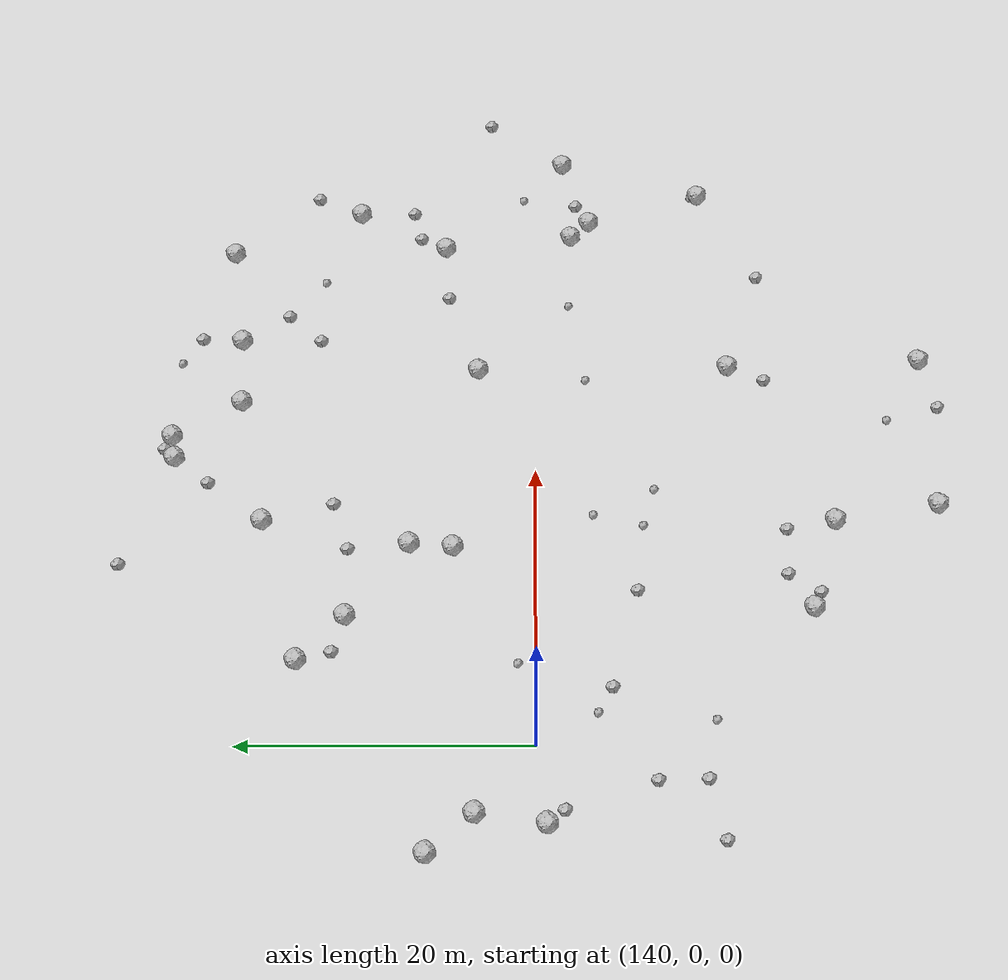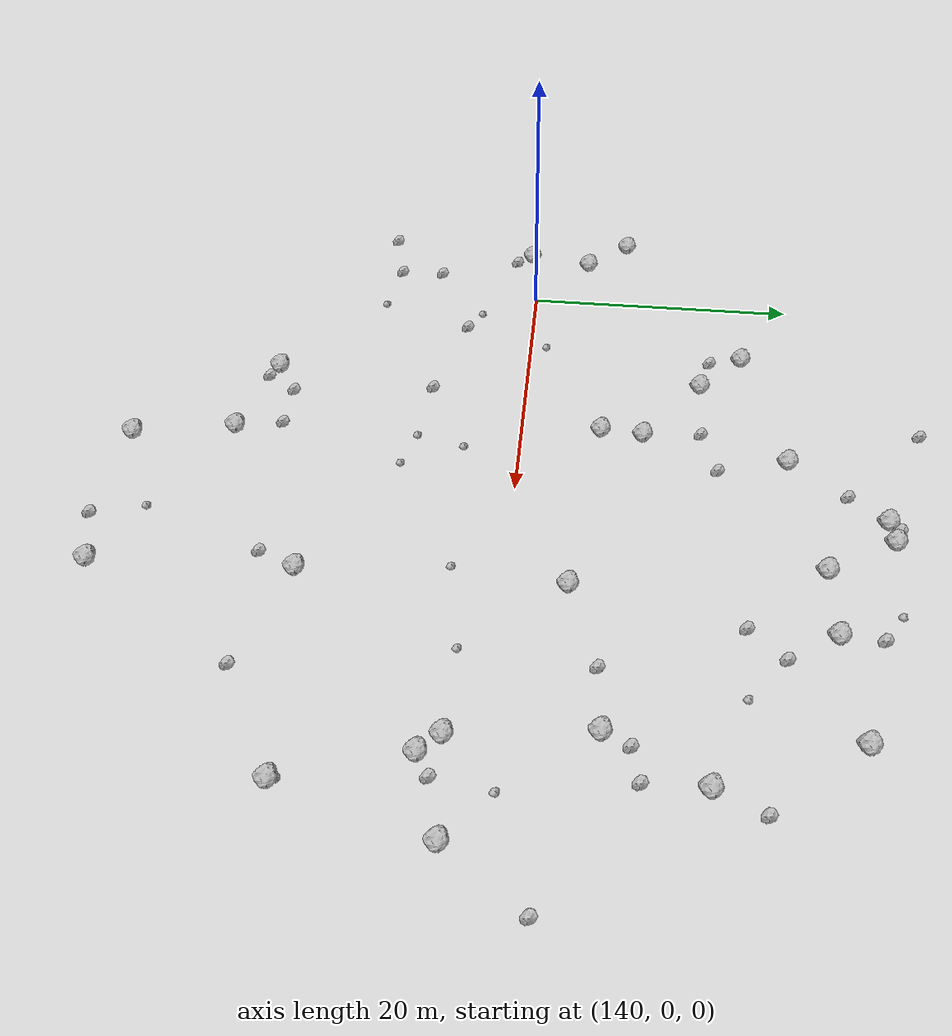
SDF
<sdf version="1.6">
 <world name="default">
  <include><uri>model://sun</uri></include>
  <model name="rock1_4_2">
   <include><uri>model://rock1</uri><pose>135.58384378891975 4.052281735157365 0.5 0 0 0</pose></include>
  </model>
  <model name="rock1_4_3">
   <include><uri>model://rock1</uri><pose>133.0149560592227 7.180877628024703 0.5 0 0 0</pose></include>
  </model>
  <model name="rock1_4_4">
   <include><uri>model://rock1</uri><pose>154.40288414471897 8.809571608019702 0.5 0 0 0</pose></include>
  </model>
  <model name="rock1_4_5">
   <include><uri>model://rock1</uri><pose>134.89102840240855 -0.6825223266689697 0.5 0 0 0</pose></include>
  </model>
  <model name="rock1_4_6">
   <include><uri>model://rock1</uri><pose>162.75517870995841 25.92905045723726 0.5 0 0 0</pose></include>
  </model>
  <model name="rock1_4_7">
   <include><uri>model://rock1</uri><pose>156.17628253453734 19.136253959658745 0.5 0 0 0</pose></include>
  </model>
  <model name="rock1_4_8">
   <include><uri>model://rock1</uri><pose>168.04660443159497 4.1521895446485 0.5 0 0 0</pose></include>
  </model>
  <model name="rock1_4_9">
   <include><uri>model://rock1</uri><pose>179.41561606439717 -2.677014754234264 0.5 0 0 0</pose></include>
  </model>
  <model name="rock1_4_10">
   <include><uri>model://rock1</uri><pose>156.06411024754237 -20.885328744778484 0.5 0 0 0</pose></include>
  </model>
  <model name="rock1_4_11">
   <include><uri>model://rock1</uri><pose>177.99545555485315 22.48290592920356 0.5 0 0 0</pose></include>
  </model>
  <model name="rock1_4_12">
   <include><uri>model://rock1</uri><pose>168.24189046927 -13.928593896116357 0.5 0 0 0</pose></include>
  </model>
  <model name="rock1_4_13">
   <include><uri>model://rock1</uri><pose>181.50557744822282 13.141873767956135 0.5 0 0 0</pose></include>
  </model>
  <model name="rock1_4_14">
   <include><uri>model://rock1</uri><pose>183.08774625579127 -12.374847255484866 0.5 0 0 0</pose></include>
  </model>
  <model name="rock1_4_15">
   <include><uri>model://rock1</uri><pose>168.69863860568074 -27.88723412714498 0.5 0 0 0</pose></include>
  </model>
  <model name="rock1_4_16">
   <include><uri>model://rock1</uri><pose>165.48518226110724 21.151240272396258 0.5 0 0 0</pose></include>
  </model>
  <model name="rock1_4_17">
   <include><uri>model://rock1</uri><pose>149.6208461169271 -18.975373238361467 0.5 0 0 0</pose></include>
  </model>
  <model name="rock1_4_18">
   <include><uri>model://rock1</uri><pose>185.95977015068556 -2.1140723033388973 0.5 0 0 0</pose></include>
  </model>
  <model name="rock1_4_19">
   <include><uri>model://rock1</uri><pose>149.12623258575874 13.023780146128786 0.5 0 0 0</pose></include>
  </model>
  <model name="rock1_4_20">
   <include><uri>model://rock1</uri><pose>157.26622272715676 -28.19213744715308 0.5 0 0 0</pose></include>
  </model>
  <model name="rock1_4_21">
   <include><uri>model://rock1</uri><pose>170.50564061594966 21.443228438186708 0.5 0 0 0</pose></include>
  </model>
  <model name="rock1_4_22">
   <include><uri>model://rock1</uri><pose>161.06152577266036 25.631319993662885 0.5 0 0 0</pose></include>
  </model>
  <model name="rock1_4_23">
   <include><uri>model://rock1</uri><pose>178.43478267201374 6.678854217103876 0.5 0 0 0</pose></include>
  </model>
  <model name="rock1_4_24">
   <include><uri>model://rock1</uri><pose>145.98084908547878 16.196677225913838 0.5 0 0 0</pose></include>
  </model>
  <model name="rock1_4_25">
   <include><uri>model://rock1</uri><pose>180.70381355841477 -4.051435941412215 0.5 0 0 0</pose></include>
  </model>
  <model name="rock1_4_26">
   <include><uri>model://rock1</uri><pose>154.16884164256547 5.761369439223955 0.5 0 0 0</pose></include>
  </model>
  <model name="rock2_4_0">
   <include><uri>model://rock2</uri><pose>174.06107808290722 6.355068188732346 0.3 0 0 0</pose></include>
  </model>
  <model name="rock2_4_1">
   <include><uri>model://rock2</uri><pose>152.8916042372836 28.845236457624715 0.3 0 0 0</pose></include>
  </model>
  <model name="rock2_4_2">
   <include><uri>model://rock2</uri><pose>181.5075336942866 9.123417622235657 0.3 0 0 0</pose></include>
  </model>
  <model name="rock2_4_3">
   <include><uri>model://rock2</uri><pose>152.03027188938654 -17.375222973203346 0.3 0 0 0</pose></include>
  </model>
  <model name="rock2_4_4">
   <include><uri>model://rock2</uri><pose>133.7307742636231 -12.242587400679554 0.3 0 0 0</pose></include>
  </model>
  <model name="rock2_4_5">
   <include><uri>model://rock2</uri><pose>159.04041590983985 23.128894702120853 0.3 0 0 0</pose></include>
  </model>
  <model name="rock2_4_6">
   <include><uri>model://rock2</uri><pose>175.7772336548868 -16.502705807007146 0.3 0 0 0</pose></include>
  </model>
  <model name="rock2_4_7">
   <include><uri>model://rock2</uri><pose>170.62072872177112 24.353461782890655 0.3 0 0 0</pose></include>
  </model>
  <model name="rock2_4_8">
   <include><uri>model://rock2</uri><pose>189.64187729943973 3.341008378826352 0.3 0 0 0</pose></include>
  </model>
  <model name="rock2_4_9">
   <include><uri>model://rock2</uri><pose>157.37624749870423 14.18363732878985 0.3 0 0 0</pose></include>
  </model>
  <model name="rock2_4_10">
   <include><uri>model://rock2</uri><pose>182.15915072988628 -3.0948745520893794 0.3 0 0 0</pose></include>
  </model>
  <model name="rock2_4_11">
   <include><uri>model://rock2</uri><pose>172.52116995384358 18.111745802423734 0.3 0 0 0</pose></include>
  </model>
  <model name="rock2_4_12">
   <include><uri>model://rock2</uri><pose>137.73833337829134 -11.262484834347156 0.3 0 0 0</pose></include>
  </model>
  <model name="rock2_4_13">
   <include><uri>model://rock2</uri><pose>143.9910588525278 -5.11467963451619 0.3 0 0 0</pose></include>
  </model>
  <model name="rock2_4_14">
   <include><uri>model://rock2</uri><pose>150.86351414716484 -6.976138493956739 0.3 0 0 0</pose></include>
  </model>
  <model name="rock2_4_15">
   <include><uri>model://rock2</uri><pose>164.83552115964991 -28.931585113012453 0.3 0 0 0</pose></include>
  </model>
  <model name="rock2_4_16">
   <include><uri>model://rock2</uri><pose>170.45355700388367 15.690324275381123 0.3 0 0 0</pose></include>
  </model>
  <model name="rock2_4_17">
   <include><uri>model://rock2</uri><pose>179.24407706038318 8.529368245619665 0.3 0 0 0</pose></include>
  </model>
  <model name="rock2_4_18">
   <include><uri>model://rock2</uri><pose>155.3661037741436 -17.491242509880756 0.3 0 0 0</pose></include>
  </model>
  <model name="rock2_4_19">
   <include><uri>model://rock2</uri><pose>135.72684273702706 -1.8487765257025899 0.3 0 0 0</pose></include>
  </model>
  <model name="rock2_4_20">
   <include><uri>model://rock2</uri><pose>150.696702715187 -19.538884242949027 0.3 0 0 0</pose></include>
  </model>
  <model name="rock2_4_21">
   <include><uri>model://rock2</uri><pose>161.70461673549707 26.407051408600182 0.3 0 0 0</pose></include>
  </model>
  <model name="rock2_4_22">
   <include><uri>model://rock2</uri><pose>137.65877316263112 -7.943047926291612 0.3 0 0 0</pose></include>
  </model>
  <model name="rock2_4_23">
   <include><uri>model://rock2</uri><pose>182.85628645522647 16.40636714759269 0.3 0 0 0</pose></include>
  </model>
  <model name="rock2_4_24">
   <include><uri>model://rock2</uri><pose>146.5062942016843 13.832465502956836 0.3 0 0 0</pose></include>
  </model>
  <model name="rock2_4_25">
   <include><uri>model://rock2</uri><pose>167.07742169286527 -16.552692664531946 0.3 0 0 0</pose></include>
  </model>
  <model name="rock2_4_26">
   <include><uri>model://rock2</uri><pose>153.98308630196004 13.057481178751402 0.3 0 0 0</pose></include>
  </model>
  <model name="rock3_4_0">
   <include><uri>model://rock3</uri><pose>182.9709235402702 -11.90000473867395 0.2 0 0 0</pose></include>
  </model>
  <model name="rock3_4_1">
   <include><uri>model://rock3</uri><pose>168.64390185183882 25.69176840114727 0.2 0 0 0</pose></include>
  </model>
  <model name="rock3_4_2">
   <include><uri>model://rock3</uri><pose>155.69694942064112 -7.521615221318214 0.2 0 0 0</pose></include>
  </model>
  <model name="rock3_4_3">
   <include><uri>model://rock3</uri><pose>167.157119445916 -3.648189962355243 0.2 0 0 0</pose></include>
  </model>
  <model name="rock3_4_4">
   <include><uri>model://rock3</uri><pose>182.73519733529017 0.7927076337493766 0.2 0 0 0</pose></include>
  </model>
  <model name="rock3_4_5">
   <include><uri>model://rock3</uri><pose>141.69633775369172 -12.005229092566246 0.2 0 0 0</pose></include>
  </model>
  <model name="rock3_4_6">
   <include><uri>model://rock3</uri><pose>142.22099988562448 -4.147303628203517 0.2 0 0 0</pose></include>
  </model>
  <model name="rock3_4_7">
   <include><uri>model://rock3</uri><pose>163.83489485869524 -25.25384751347174 0.2 0 0 0</pose></include>
  </model>
  <model name="rock3_4_8">
   <include><uri>model://rock3</uri><pose>145.64890920116068 1.2029647033085773 0.2 0 0 0</pose></include>
  </model>
  <model name="rock3_4_9">
   <include><uri>model://rock3</uri><pose>156.50711325622188 -4.0419111734037365 0.2 0 0 0</pose></include>
  </model>
  <model name="rock3_4_10">
   <include><uri>model://rock3</uri><pose>175.4742461006356 15.540151484109444 0.2 0 0 0</pose></include>
  </model>
  <model name="rock3_4_11">
   <include><uri>model://rock3</uri><pose>158.4432455617402 -8.356539086610276 0.2 0 0 0</pose></include>
  </model>
  <model name="rock3_4_12">
   <include><uri>model://rock3</uri><pose>173.40260328987648 -2.500611361249309 0.2 0 0 0</pose></include>
  </model>
 </world>
</sdf>
